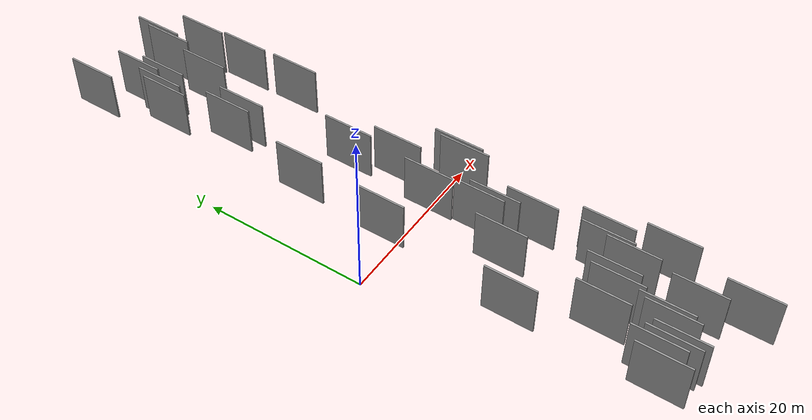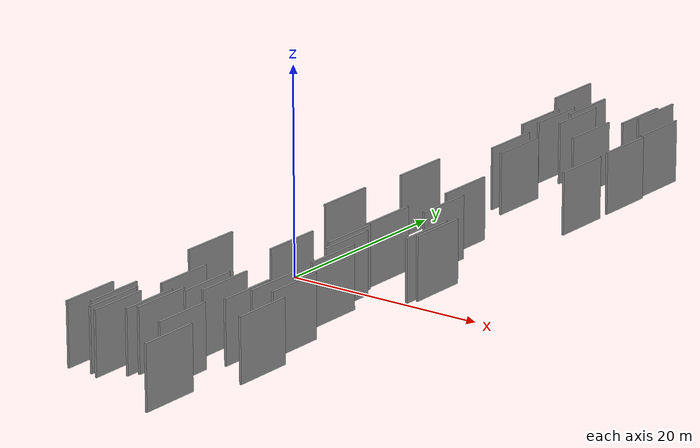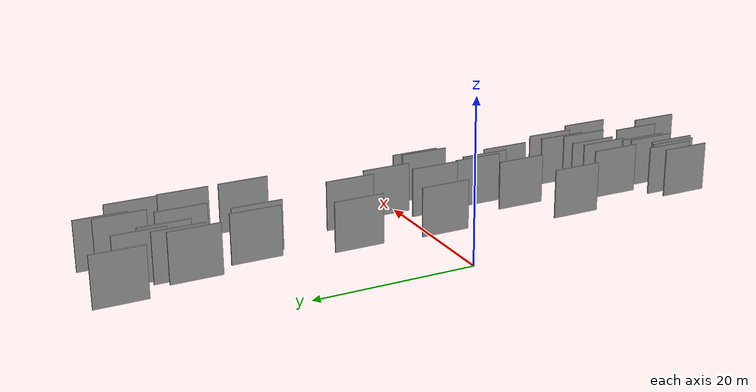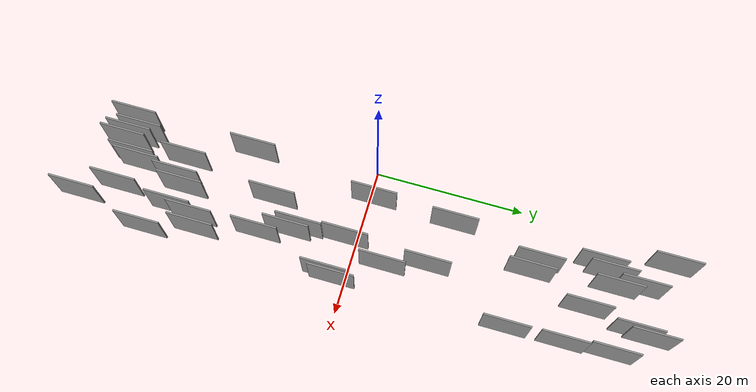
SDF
<sdf version="1.6">
 <world name="default">
  <scene>
   <sky><clouds><speed>12</speed></clouds></sky>
   <ambient>0.4 0.4 0.4 1</ambient>
   <background>0.7 0.7 0.7 1</background>
   <shadows>1</shadows>
  </scene>
  <gravity>0 0 -9.8066</gravity>
  <magnetic_field>6e-06 2.3e-05 -4.2e-05</magnetic_field>
  <physics default="0" name="default_physics" type="ode">
   <ode>
    <solver>
     <type>quick</type>
     <iters>10</iters>
     <sor>1.0</sor>
     <use_dynamic_moi_rescaling>0</use_dynamic_moi_rescaling>
    </solver>
    <constraints>
     <cfm>0</cfm>
     <erp>0.2</erp>
     <contact_max_correcting_vel>100</contact_max_correcting_vel>
     <contact_surface_layer>0.001</contact_surface_layer>
    </constraints>
   </ode>
   <max_step_size>0.004</max_step_size>
   <real_time_factor>1</real_time_factor>
   <real_time_update_rate>250</real_time_update_rate>
  </physics>
  <light name="sun" type="directional">
   <pose>0 0 10 0 0 0</pose>
   <diffuse>0.8 0.8 0.8 1</diffuse>
   <specular>0.2 0.2 0.2 1</specular>
   <attenuation>
    <range>1000</range>
    <constant>0.9</constant>
    <linear>0.01</linear>
    <quadratic>0.001</quadratic>
   </attenuation>
   <direction>-0.5 0.1 -0.9</direction>
  </light>
  <model name="grey_wall_1">
   <static>1</static>
   <pose>10.4138 -23.0798 2.5 0.000000 0.000000 1.570796</pose>
   <link name="link">
    <pose>0 0 3.00 0 0 0</pose>
    <collision name="collision"><geometry><box><size>6.00 0.2 6.00</size></box></geometry></collision>
    <visual name="visual">
     <cast_shadows>0</cast_shadows>
     <geometry><box><size>6.00 0.2 6.00</size></box></geometry>
     <material>
      <script>
       <uri>model://grey_wall/materials/scripts</uri>
       <uri>model://grey_wall/materials/textures</uri>
       <name>vrc/grey_wall</name>
      </script>
     </material>
    </visual>
   </link>
  </model>
  <model name="grey_wall_2">
   <static>1</static>
   <pose>3.3635 39.5296 2.5 0.000000 0.000000 1.570796</pose>
   <link name="link">
    <pose>0 0 3.00 0 0 0</pose>
    <collision name="collision"><geometry><box><size>6.00 0.2 6.00</size></box></geometry></collision>
    <visual name="visual">
     <cast_shadows>0</cast_shadows>
     <geometry><box><size>6.00 0.2 6.00</size></box></geometry>
     <material>
      <script>
       <uri>model://grey_wall/materials/scripts</uri>
       <uri>model://grey_wall/materials/textures</uri>
       <name>vrc/grey_wall</name>
      </script>
     </material>
    </visual>
   </link>
  </model>
  <model name="grey_wall_3">
   <static>1</static>
   <pose>13.4250 38.5788 2.5 0.000000 0.000000 1.570796</pose>
   <link name="link">
    <pose>0 0 3.00 0 0 0</pose>
    <collision name="collision"><geometry><box><size>6.00 0.2 6.00</size></box></geometry></collision>
    <visual name="visual">
     <cast_shadows>0</cast_shadows>
     <geometry><box><size>6.00 0.2 6.00</size></box></geometry>
     <material>
      <script>
       <uri>model://grey_wall/materials/scripts</uri>
       <uri>model://grey_wall/materials/textures</uri>
       <name>vrc/grey_wall</name>
      </script>
     </material>
    </visual>
   </link>
  </model>
  <model name="grey_wall_4">
   <static>1</static>
   <pose>16.3193 -2.2714 2.5 0.000000 0.000000 1.570796</pose>
   <link name="link">
    <pose>0 0 3.00 0 0 0</pose>
    <collision name="collision"><geometry><box><size>6.00 0.2 6.00</size></box></geometry></collision>
    <visual name="visual">
     <cast_shadows>0</cast_shadows>
     <geometry><box><size>6.00 0.2 6.00</size></box></geometry>
     <material>
      <script>
       <uri>model://grey_wall/materials/scripts</uri>
       <uri>model://grey_wall/materials/textures</uri>
       <name>vrc/grey_wall</name>
      </script>
     </material>
    </visual>
   </link>
  </model>
  <model name="grey_wall_5">
   <static>1</static>
   <pose>16.8255 28.2337 2.5 0.000000 0.000000 1.570796</pose>
   <link name="link">
    <pose>0 0 3.00 0 0 0</pose>
    <collision name="collision"><geometry><box><size>6.00 0.2 6.00</size></box></geometry></collision>
    <visual name="visual">
     <cast_shadows>0</cast_shadows>
     <geometry><box><size>6.00 0.2 6.00</size></box></geometry>
     <material>
      <script>
       <uri>model://grey_wall/materials/scripts</uri>
       <uri>model://grey_wall/materials/textures</uri>
       <name>vrc/grey_wall</name>
      </script>
     </material>
    </visual>
   </link>
  </model>
  <model name="grey_wall_6">
   <static>1</static>
   <pose>7.3271 36.1389 2.5 0.000000 0.000000 1.570796</pose>
   <link name="link">
    <pose>0 0 3.00 0 0 0</pose>
    <collision name="collision"><geometry><box><size>6.00 0.2 6.00</size></box></geometry></collision>
    <visual name="visual">
     <cast_shadows>0</cast_shadows>
     <geometry><box><size>6.00 0.2 6.00</size></box></geometry>
     <material>
      <script>
       <uri>model://grey_wall/materials/scripts</uri>
       <uri>model://grey_wall/materials/textures</uri>
       <name>vrc/grey_wall</name>
      </script>
     </material>
    </visual>
   </link>
  </model>
  <model name="grey_wall_7">
   <static>1</static>
   <pose>4.5911 -30.6181 2.5 0.000000 0.000000 1.570796</pose>
   <link name="link">
    <pose>0 0 3.00 0 0 0</pose>
    <collision name="collision"><geometry><box><size>6.00 0.2 6.00</size></box></geometry></collision>
    <visual name="visual">
     <cast_shadows>0</cast_shadows>
     <geometry><box><size>6.00 0.2 6.00</size></box></geometry>
     <material>
      <script>
       <uri>model://grey_wall/materials/scripts</uri>
       <uri>model://grey_wall/materials/textures</uri>
       <name>vrc/grey_wall</name>
      </script>
     </material>
    </visual>
   </link>
  </model>
  <model name="grey_wall_8">
   <static>1</static>
   <pose>3.0097 -15.7475 2.5 0.000000 0.000000 1.570796</pose>
   <link name="link">
    <pose>0 0 3.00 0 0 0</pose>
    <collision name="collision"><geometry><box><size>6.00 0.2 6.00</size></box></geometry></collision>
    <visual name="visual">
     <cast_shadows>0</cast_shadows>
     <geometry><box><size>6.00 0.2 6.00</size></box></geometry>
     <material>
      <script>
       <uri>model://grey_wall/materials/scripts</uri>
       <uri>model://grey_wall/materials/textures</uri>
       <name>vrc/grey_wall</name>
      </script>
     </material>
    </visual>
   </link>
  </model>
  <model name="grey_wall_9">
   <static>1</static>
   <pose>8.1685 -30.3727 2.5 0.000000 0.000000 1.570796</pose>
   <link name="link">
    <pose>0 0 3.00 0 0 0</pose>
    <collision name="collision"><geometry><box><size>6.00 0.2 6.00</size></box></geometry></collision>
    <visual name="visual">
     <cast_shadows>0</cast_shadows>
     <geometry><box><size>6.00 0.2 6.00</size></box></geometry>
     <material>
      <script>
       <uri>model://grey_wall/materials/scripts</uri>
       <uri>model://grey_wall/materials/textures</uri>
       <name>vrc/grey_wall</name>
      </script>
     </material>
    </visual>
   </link>
  </model>
  <model name="grey_wall_10">
   <static>1</static>
   <pose>12.9668 36.6011 2.5 0.000000 0.000000 1.570796</pose>
   <link name="link">
    <pose>0 0 3.00 0 0 0</pose>
    <collision name="collision"><geometry><box><size>6.00 0.2 6.00</size></box></geometry></collision>
    <visual name="visual">
     <cast_shadows>0</cast_shadows>
     <geometry><box><size>6.00 0.2 6.00</size></box></geometry>
     <material>
      <script>
       <uri>model://grey_wall/materials/scripts</uri>
       <uri>model://grey_wall/materials/textures</uri>
       <name>vrc/grey_wall</name>
      </script>
     </material>
    </visual>
   </link>
  </model>
  <model name="grey_wall_11">
   <static>1</static>
   <pose>7.5120 23.1187 2.5 0.000000 0.000000 1.570796</pose>
   <link name="link">
    <pose>0 0 3.00 0 0 0</pose>
    <collision name="collision"><geometry><box><size>6.00 0.2 6.00</size></box></geometry></collision>
    <visual name="visual">
     <cast_shadows>0</cast_shadows>
     <geometry><box><size>6.00 0.2 6.00</size></box></geometry>
     <material>
      <script>
       <uri>model://grey_wall/materials/scripts</uri>
       <uri>model://grey_wall/materials/textures</uri>
       <name>vrc/grey_wall</name>
      </script>
     </material>
    </visual>
   </link>
  </model>
  <model name="grey_wall_12">
   <static>1</static>
   <pose>12.4008 -31.2309 2.5 0.000000 0.000000 1.570796</pose>
   <link name="link">
    <pose>0 0 3.00 0 0 0</pose>
    <collision name="collision"><geometry><box><size>6.00 0.2 6.00</size></box></geometry></collision>
    <visual name="visual">
     <cast_shadows>0</cast_shadows>
     <geometry><box><size>6.00 0.2 6.00</size></box></geometry>
     <material>
      <script>
       <uri>model://grey_wall/materials/scripts</uri>
       <uri>model://grey_wall/materials/textures</uri>
       <name>vrc/grey_wall</name>
      </script>
     </material>
    </visual>
   </link>
  </model>
  <model name="grey_wall_13">
   <static>1</static>
   <pose>3.0069 -31.8445 2.5 0.000000 0.000000 1.570796</pose>
   <link name="link">
    <pose>0 0 3.00 0 0 0</pose>
    <collision name="collision"><geometry><box><size>6.00 0.2 6.00</size></box></geometry></collision>
    <visual name="visual">
     <cast_shadows>0</cast_shadows>
     <geometry><box><size>6.00 0.2 6.00</size></box></geometry>
     <material>
      <script>
       <uri>model://grey_wall/materials/scripts</uri>
       <uri>model://grey_wall/materials/textures</uri>
       <name>vrc/grey_wall</name>
      </script>
     </material>
    </visual>
   </link>
  </model>
  <model name="grey_wall_14">
   <static>1</static>
   <pose>8.1854 33.1751 2.5 0.000000 0.000000 1.570796</pose>
   <link name="link">
    <pose>0 0 3.00 0 0 0</pose>
    <collision name="collision"><geometry><box><size>6.00 0.2 6.00</size></box></geometry></collision>
    <visual name="visual">
     <cast_shadows>0</cast_shadows>
     <geometry><box><size>6.00 0.2 6.00</size></box></geometry>
     <material>
      <script>
       <uri>model://grey_wall/materials/scripts</uri>
       <uri>model://grey_wall/materials/textures</uri>
       <name>vrc/grey_wall</name>
      </script>
     </material>
    </visual>
   </link>
  </model>
  <model name="grey_wall_15">
   <static>1</static>
   <pose>16.9858 -26.3605 2.5 0.000000 0.000000 1.570796</pose>
   <link name="link">
    <pose>0 0 3.00 0 0 0</pose>
    <collision name="collision"><geometry><box><size>6.00 0.2 6.00</size></box></geometry></collision>
    <visual name="visual">
     <cast_shadows>0</cast_shadows>
     <geometry><box><size>6.00 0.2 6.00</size></box></geometry>
     <material>
      <script>
       <uri>model://grey_wall/materials/scripts</uri>
       <uri>model://grey_wall/materials/textures</uri>
       <name>vrc/grey_wall</name>
      </script>
     </material>
    </visual>
   </link>
  </model>
  <model name="grey_wall_16">
   <static>1</static>
   <pose>5.4166 -31.7544 2.5 0.000000 0.000000 1.570796</pose>
   <link name="link">
    <pose>0 0 3.00 0 0 0</pose>
    <collision name="collision"><geometry><box><size>6.00 0.2 6.00</size></box></geometry></collision>
    <visual name="visual">
     <cast_shadows>0</cast_shadows>
     <geometry><box><size>6.00 0.2 6.00</size></box></geometry>
     <material>
      <script>
       <uri>model://grey_wall/materials/scripts</uri>
       <uri>model://grey_wall/materials/textures</uri>
       <name>vrc/grey_wall</name>
      </script>
     </material>
    </visual>
   </link>
  </model>
  <model name="grey_wall_17">
   <static>1</static>
   <pose>11.4861 -7.0488 2.5 0.000000 0.000000 1.570796</pose>
   <link name="link">
    <pose>0 0 3.00 0 0 0</pose>
    <collision name="collision"><geometry><box><size>6.00 0.2 6.00</size></box></geometry></collision>
    <visual name="visual">
     <cast_shadows>0</cast_shadows>
     <geometry><box><size>6.00 0.2 6.00</size></box></geometry>
     <material>
      <script>
       <uri>model://grey_wall/materials/scripts</uri>
       <uri>model://grey_wall/materials/textures</uri>
       <name>vrc/grey_wall</name>
      </script>
     </material>
    </visual>
   </link>
  </model>
  <model name="grey_wall_18">
   <static>1</static>
   <pose>6.5810 -23.8652 2.5 0.000000 0.000000 1.570796</pose>
   <link name="link">
    <pose>0 0 3.00 0 0 0</pose>
    <collision name="collision"><geometry><box><size>6.00 0.2 6.00</size></box></geometry></collision>
    <visual name="visual">
     <cast_shadows>0</cast_shadows>
     <geometry><box><size>6.00 0.2 6.00</size></box></geometry>
     <material>
      <script>
       <uri>model://grey_wall/materials/scripts</uri>
       <uri>model://grey_wall/materials/textures</uri>
       <name>vrc/grey_wall</name>
      </script>
     </material>
    </visual>
   </link>
  </model>
  <model name="grey_wall_19">
   <static>1</static>
   <pose>5.6276 30.7018 2.5 0.000000 0.000000 1.570796</pose>
   <link name="link">
    <pose>0 0 3.00 0 0 0</pose>
    <collision name="collision"><geometry><box><size>6.00 0.2 6.00</size></box></geometry></collision>
    <visual name="visual">
     <cast_shadows>0</cast_shadows>
     <geometry><box><size>6.00 0.2 6.00</size></box></geometry>
     <material>
      <script>
       <uri>model://grey_wall/materials/scripts</uri>
       <uri>model://grey_wall/materials/textures</uri>
       <name>vrc/grey_wall</name>
      </script>
     </material>
    </visual>
   </link>
  </model>
  <model name="grey_wall_20">
   <static>1</static>
   <pose>11.8398 9.7941 2.5 0.000000 0.000000 1.570796</pose>
   <link name="link">
    <pose>0 0 3.00 0 0 0</pose>
    <collision name="collision"><geometry><box><size>6.00 0.2 6.00</size></box></geometry></collision>
    <visual name="visual">
     <cast_shadows>0</cast_shadows>
     <geometry><box><size>6.00 0.2 6.00</size></box></geometry>
     <material>
      <script>
       <uri>model://grey_wall/materials/scripts</uri>
       <uri>model://grey_wall/materials/textures</uri>
       <name>vrc/grey_wall</name>
      </script>
     </material>
    </visual>
   </link>
  </model>
  <model name="grey_wall_21">
   <static>1</static>
   <pose>11.7619 30.1165 2.5 0.000000 0.000000 1.570796</pose>
   <link name="link">
    <pose>0 0 3.00 0 0 0</pose>
    <collision name="collision"><geometry><box><size>6.00 0.2 6.00</size></box></geometry></collision>
    <visual name="visual">
     <cast_shadows>0</cast_shadows>
     <geometry><box><size>6.00 0.2 6.00</size></box></geometry>
     <material>
      <script>
       <uri>model://grey_wall/materials/scripts</uri>
       <uri>model://grey_wall/materials/textures</uri>
       <name>vrc/grey_wall</name>
      </script>
     </material>
    </visual>
   </link>
  </model>
  <model name="grey_wall_22">
   <static>1</static>
   <pose>5.4948 11.6459 2.5 0.000000 0.000000 1.570796</pose>
   <link name="link">
    <pose>0 0 3.00 0 0 0</pose>
    <collision name="collision"><geometry><box><size>6.00 0.2 6.00</size></box></geometry></collision>
    <visual name="visual">
     <cast_shadows>0</cast_shadows>
     <geometry><box><size>6.00 0.2 6.00</size></box></geometry>
     <material>
      <script>
       <uri>model://grey_wall/materials/scripts</uri>
       <uri>model://grey_wall/materials/textures</uri>
       <name>vrc/grey_wall</name>
      </script>
     </material>
    </visual>
   </link>
  </model>
  <model name="grey_wall_23">
   <static>1</static>
   <pose>15.3777 -19.9587 2.5 0.000000 0.000000 1.570796</pose>
   <link name="link">
    <pose>0 0 3.00 0 0 0</pose>
    <collision name="collision"><geometry><box><size>6.00 0.2 6.00</size></box></geometry></collision>
    <visual name="visual">
     <cast_shadows>0</cast_shadows>
     <geometry><box><size>6.00 0.2 6.00</size></box></geometry>
     <material>
      <script>
       <uri>model://grey_wall/materials/scripts</uri>
       <uri>model://grey_wall/materials/textures</uri>
       <name>vrc/grey_wall</name>
      </script>
     </material>
    </visual>
   </link>
  </model>
  <model name="grey_wall_24">
   <static>1</static>
   <pose>11.2071 -1.0502 2.5 0.000000 0.000000 1.570796</pose>
   <link name="link">
    <pose>0 0 3.00 0 0 0</pose>
    <collision name="collision"><geometry><box><size>6.00 0.2 6.00</size></box></geometry></collision>
    <visual name="visual">
     <cast_shadows>0</cast_shadows>
     <geometry><box><size>6.00 0.2 6.00</size></box></geometry>
     <material>
      <script>
       <uri>model://grey_wall/materials/scripts</uri>
       <uri>model://grey_wall/materials/textures</uri>
       <name>vrc/grey_wall</name>
      </script>
     </material>
    </visual>
   </link>
  </model>
  <model name="grey_wall_25">
   <static>1</static>
   <pose>14.7472 -35.8660 2.5 0.000000 0.000000 1.570796</pose>
   <link name="link">
    <pose>0 0 3.00 0 0 0</pose>
    <collision name="collision"><geometry><box><size>6.00 0.2 6.00</size></box></geometry></collision>
    <visual name="visual">
     <cast_shadows>0</cast_shadows>
     <geometry><box><size>6.00 0.2 6.00</size></box></geometry>
     <material>
      <script>
       <uri>model://grey_wall/materials/scripts</uri>
       <uri>model://grey_wall/materials/textures</uri>
       <name>vrc/grey_wall</name>
      </script>
     </material>
    </visual>
   </link>
  </model>
  <model name="grey_wall_26">
   <static>1</static>
   <pose>13.3526 4.3613 2.5 0.000000 0.000000 1.570796</pose>
   <link name="link">
    <pose>0 0 3.00 0 0 0</pose>
    <collision name="collision"><geometry><box><size>6.00 0.2 6.00</size></box></geometry></collision>
    <visual name="visual">
     <cast_shadows>0</cast_shadows>
     <geometry><box><size>6.00 0.2 6.00</size></box></geometry>
     <material>
      <script>
       <uri>model://grey_wall/materials/scripts</uri>
       <uri>model://grey_wall/materials/textures</uri>
       <name>vrc/grey_wall</name>
      </script>
     </material>
    </visual>
   </link>
  </model>
  <model name="grey_wall_27">
   <static>1</static>
   <pose>9.0126 22.3778 2.5 0.000000 0.000000 1.570796</pose>
   <link name="link">
    <pose>0 0 3.00 0 0 0</pose>
    <collision name="collision"><geometry><box><size>6.00 0.2 6.00</size></box></geometry></collision>
    <visual name="visual">
     <cast_shadows>0</cast_shadows>
     <geometry><box><size>6.00 0.2 6.00</size></box></geometry>
     <material>
      <script>
       <uri>model://grey_wall/materials/scripts</uri>
       <uri>model://grey_wall/materials/textures</uri>
       <name>vrc/grey_wall</name>
      </script>
     </material>
    </visual>
   </link>
  </model>
  <model name="grey_wall_28">
   <static>1</static>
   <pose>8.5533 -11.4217 2.5 0.000000 0.000000 1.570796</pose>
   <link name="link">
    <pose>0 0 3.00 0 0 0</pose>
    <collision name="collision"><geometry><box><size>6.00 0.2 6.00</size></box></geometry></collision>
    <visual name="visual">
     <cast_shadows>0</cast_shadows>
     <geometry><box><size>6.00 0.2 6.00</size></box></geometry>
     <material>
      <script>
       <uri>model://grey_wall/materials/scripts</uri>
       <uri>model://grey_wall/materials/textures</uri>
       <name>vrc/grey_wall</name>
      </script>
     </material>
    </visual>
   </link>
  </model>
  <model name="grey_wall_29">
   <static>1</static>
   <pose>12.2326 -8.4662 2.5 0.000000 0.000000 1.570796</pose>
   <link name="link">
    <pose>0 0 3.00 0 0 0</pose>
    <collision name="collision"><geometry><box><size>6.00 0.2 6.00</size></box></geometry></collision>
    <visual name="visual">
     <cast_shadows>0</cast_shadows>
     <geometry><box><size>6.00 0.2 6.00</size></box></geometry>
     <material>
      <script>
       <uri>model://grey_wall/materials/scripts</uri>
       <uri>model://grey_wall/materials/textures</uri>
       <name>vrc/grey_wall</name>
      </script>
     </material>
    </visual>
   </link>
  </model>
  <model name="grey_wall_30">
   <static>1</static>
   <pose>6.4597 32.1451 2.5 0.000000 0.000000 1.570796</pose>
   <link name="link">
    <pose>0 0 3.00 0 0 0</pose>
    <collision name="collision"><geometry><box><size>6.00 0.2 6.00</size></box></geometry></collision>
    <visual name="visual">
     <cast_shadows>0</cast_shadows>
     <geometry><box><size>6.00 0.2 6.00</size></box></geometry>
     <material>
      <script>
       <uri>model://grey_wall/materials/scripts</uri>
       <uri>model://grey_wall/materials/textures</uri>
       <name>vrc/grey_wall</name>
      </script>
     </material>
    </visual>
   </link>
  </model>
  <model name="grey_wall_31">
   <static>1</static>
   <pose>16.7542 -1.2713 2.5 0.000000 0.000000 1.570796</pose>
   <link name="link">
    <pose>0 0 3.00 0 0 0</pose>
    <collision name="collision"><geometry><box><size>6.00 0.2 6.00</size></box></geometry></collision>
    <visual name="visual">
     <cast_shadows>0</cast_shadows>
     <geometry><box><size>6.00 0.2 6.00</size></box></geometry>
     <material>
      <script>
       <uri>model://grey_wall/materials/scripts</uri>
       <uri>model://grey_wall/materials/textures</uri>
       <name>vrc/grey_wall</name>
      </script>
     </material>
    </visual>
   </link>
  </model>
  <model name="grey_wall_32">
   <static>1</static>
   <pose>5.0265 0.9333 2.5 0.000000 0.000000 1.570796</pose>
   <link name="link">
    <pose>0 0 3.00 0 0 0</pose>
    <collision name="collision"><geometry><box><size>6.00 0.2 6.00</size></box></geometry></collision>
    <visual name="visual">
     <cast_shadows>0</cast_shadows>
     <geometry><box><size>6.00 0.2 6.00</size></box></geometry>
     <material>
      <script>
       <uri>model://grey_wall/materials/scripts</uri>
       <uri>model://grey_wall/materials/textures</uri>
       <name>vrc/grey_wall</name>
      </script>
     </material>
    </visual>
   </link>
  </model>
  <model name="grey_wall_33">
   <static>1</static>
   <pose>16.9094 21.0055 2.5 0.000000 0.000000 1.570796</pose>
   <link name="link">
    <pose>0 0 3.00 0 0 0</pose>
    <collision name="collision"><geometry><box><size>6.00 0.2 6.00</size></box></geometry></collision>
    <visual name="visual">
     <cast_shadows>0</cast_shadows>
     <geometry><box><size>6.00 0.2 6.00</size></box></geometry>
     <material>
      <script>
       <uri>model://grey_wall/materials/scripts</uri>
       <uri>model://grey_wall/materials/textures</uri>
       <name>vrc/grey_wall</name>
      </script>
     </material>
    </visual>
   </link>
  </model>
  <model name="grey_wall_34">
   <static>1</static>
   <pose>16.5243 34.3904 2.5 0.000000 0.000000 1.570796</pose>
   <link name="link">
    <pose>0 0 3.00 0 0 0</pose>
    <collision name="collision"><geometry><box><size>6.00 0.2 6.00</size></box></geometry></collision>
    <visual name="visual">
     <cast_shadows>0</cast_shadows>
     <geometry><box><size>6.00 0.2 6.00</size></box></geometry>
     <material>
      <script>
       <uri>model://grey_wall/materials/scripts</uri>
       <uri>model://grey_wall/materials/textures</uri>
       <name>vrc/grey_wall</name>
      </script>
     </material>
    </visual>
   </link>
  </model>
  <model name="grey_wall_35">
   <static>1</static>
   <pose>6.3109 -32.1982 2.5 0.000000 0.000000 1.570796</pose>
   <link name="link">
    <pose>0 0 3.00 0 0 0</pose>
    <collision name="collision"><geometry><box><size>6.00 0.2 6.00</size></box></geometry></collision>
    <visual name="visual">
     <cast_shadows>0</cast_shadows>
     <geometry><box><size>6.00 0.2 6.00</size></box></geometry>
     <material>
      <script>
       <uri>model://grey_wall/materials/scripts</uri>
       <uri>model://grey_wall/materials/textures</uri>
       <name>vrc/grey_wall</name>
      </script>
     </material>
    </visual>
   </link>
  </model>
  <model name="grey_wall_36">
   <static>1</static>
   <pose>8.7368 -29.5062 2.5 0.000000 0.000000 1.570796</pose>
   <link name="link">
    <pose>0 0 3.00 0 0 0</pose>
    <collision name="collision"><geometry><box><size>6.00 0.2 6.00</size></box></geometry></collision>
    <visual name="visual">
     <cast_shadows>0</cast_shadows>
     <geometry><box><size>6.00 0.2 6.00</size></box></geometry>
     <material>
      <script>
       <uri>model://grey_wall/materials/scripts</uri>
       <uri>model://grey_wall/materials/textures</uri>
       <name>vrc/grey_wall</name>
      </script>
     </material>
    </visual>
   </link>
  </model>
  <model name="grey_wall_37">
   <static>1</static>
   <pose>13.5639 -12.1517 2.5 0.000000 0.000000 1.570796</pose>
   <link name="link">
    <pose>0 0 3.00 0 0 0</pose>
    <collision name="collision"><geometry><box><size>6.00 0.2 6.00</size></box></geometry></collision>
    <visual name="visual">
     <cast_shadows>0</cast_shadows>
     <geometry><box><size>6.00 0.2 6.00</size></box></geometry>
     <material>
      <script>
       <uri>model://grey_wall/materials/scripts</uri>
       <uri>model://grey_wall/materials/textures</uri>
       <name>vrc/grey_wall</name>
      </script>
     </material>
    </visual>
   </link>
  </model>
  <model name="grey_wall_38">
   <static>1</static>
   <pose>9.2970 -24.0532 2.5 0.000000 0.000000 1.570796</pose>
   <link name="link">
    <pose>0 0 3.00 0 0 0</pose>
    <collision name="collision"><geometry><box><size>6.00 0.2 6.00</size></box></geometry></collision>
    <visual name="visual">
     <cast_shadows>0</cast_shadows>
     <geometry><box><size>6.00 0.2 6.00</size></box></geometry>
     <material>
      <script>
       <uri>model://grey_wall/materials/scripts</uri>
       <uri>model://grey_wall/materials/textures</uri>
       <name>vrc/grey_wall</name>
      </script>
     </material>
    </visual>
   </link>
  </model>
  <model name="grey_wall_39">
   <static>1</static>
   <pose>13.3113 -23.7306 2.5 0.000000 0.000000 1.570796</pose>
   <link name="link">
    <pose>0 0 3.00 0 0 0</pose>
    <collision name="collision"><geometry><box><size>6.00 0.2 6.00</size></box></geometry></collision>
    <visual name="visual">
     <cast_shadows>0</cast_shadows>
     <geometry><box><size>6.00 0.2 6.00</size></box></geometry>
     <material>
      <script>
       <uri>model://grey_wall/materials/scripts</uri>
       <uri>model://grey_wall/materials/textures</uri>
       <name>vrc/grey_wall</name>
      </script>
     </material>
    </visual>
   </link>
  </model>
  <model name="grey_wall_40">
   <static>1</static>
   <pose>13.7542 -20.6976 2.5 0.000000 0.000000 1.570796</pose>
   <link name="link">
    <pose>0 0 3.00 0 0 0</pose>
    <collision name="collision"><geometry><box><size>6.00 0.2 6.00</size></box></geometry></collision>
    <visual name="visual">
     <cast_shadows>0</cast_shadows>
     <geometry><box><size>6.00 0.2 6.00</size></box></geometry>
     <material>
      <script>
       <uri>model://grey_wall/materials/scripts</uri>
       <uri>model://grey_wall/materials/textures</uri>
       <name>vrc/grey_wall</name>
      </script>
     </material>
    </visual>
   </link>
  </model>
 </world>
</sdf>
